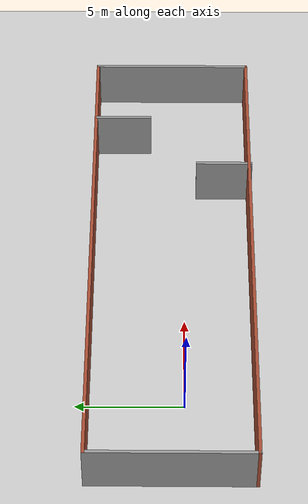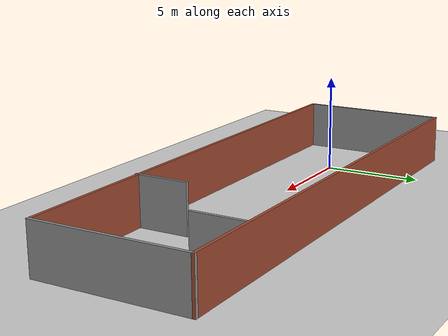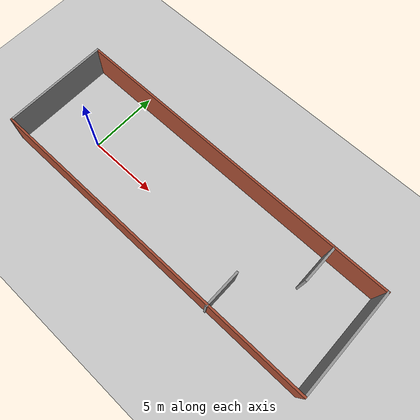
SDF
<sdf version="1.7">
 <world name="default">
  <light name="sun" type="directional">
   <pose>0 0 10 0 -0 0</pose>
   <diffuse>0.8 0.8 0.8 1</diffuse>
   <specular>0.2 0.2 0.2 1</specular>
   <attenuation>
    <range>1000</range>
    <constant>0.9</constant>
    <linear>0.01</linear>
    <quadratic>0.001</quadratic>
   </attenuation>
   <direction>-0.5 0.1 -0.9</direction>
   <spot><inner_angle>0</inner_angle><outer_angle>0</outer_angle><falloff>0</falloff></spot>
  </light>
  <model name="ground_plane">
   <static>1</static>
   <link name="link">
    <collision name="collision">
     <geometry><plane><normal>0 0 1</normal><size>100 100</size></plane></geometry>
     <surface><friction><ode><mu>100</mu><mu2>50</mu2></ode></friction></surface>
    </collision>
    <visual name="visual">
     <cast_shadows>0</cast_shadows>
     <geometry><plane><normal>0 0 1</normal><size>100 100</size></plane></geometry>
     <material>
      <script><uri>file://media/materials/scripts/gazebo.material</uri><name>Gazebo/Grey</name></script>
     </material>
    </visual>
   </link>
  </model>
  <gravity>0 0 -9.8</gravity>
  <magnetic_field>6e-06 2.3e-05 -4.2e-05</magnetic_field>
  <atmosphere type="adiabatic"/>
  <physics type="ode">
   <max_step_size>0.001</max_step_size>
   <real_time_factor>1</real_time_factor>
   <real_time_update_rate>1000</real_time_update_rate>
  </physics>
  <scene><ambient>0.4 0.4 0.4 1</ambient><background>0.7 0.7 0.7 1</background><shadows>1</shadows></scene>
  <spherical_coordinates>
   <surface_model>EARTH_WGS84</surface_model>
   <latitude_deg>0</latitude_deg>
   <longitude_deg>0</longitude_deg>
   <elevation>0</elevation>
   <heading_deg>0</heading_deg>
  </spherical_coordinates>
  <model name="test_3">
   <pose>7.95826 0.579486 0 0 -0 0</pose>
   <link name="Wall_11">
    <collision name="Wall_11_Collision">
     <geometry><box><size>7.75 0.15 2.5</size></box></geometry>
     <pose>0 0 1.25 0 -0 0</pose>
    </collision>
    <visual name="Wall_11_Visual">
     <pose>0 0 1.25 0 -0 0</pose>
     <geometry><box><size>7.75 0.15 2.5</size></box></geometry>
     <material>
      <script><uri>file://media/materials/scripts/gazebo.material</uri><name>Gazebo/Grey</name></script>
      <ambient>1 1 1 1</ambient>
     </material>
     <meta><layer>0</layer></meta>
    </visual>
    <pose>12.175 0.037628 0 0 -0 1.5708</pose>
   </link>
   <link name="Wall_13">
    <collision name="Wall_13_Collision">
     <geometry><box><size>24.5 0.15 2.5</size></box></geometry>
     <pose>0 0 1.25 0 -0 0</pose>
    </collision>
    <visual name="Wall_13_Visual">
     <pose>0 0 1.25 0 -0 0</pose>
     <geometry><box><size>24.5 0.15 2.5</size></box></geometry>
     <material>
      <script><uri>file://media/materials/scripts/gazebo.material</uri><name>Gazebo/Bricks</name></script>
      <ambient>1 1 1 1</ambient>
     </material>
     <meta><layer>0</layer></meta>
    </visual>
    <pose>0 3.83763 0 0 -0 3.14159</pose>
   </link>
   <link name="Wall_17">
    <collision name="Wall_17_Collision">
     <geometry><box><size>2.75 0.15 2.5</size></box></geometry>
     <pose>0 0 1.25 0 -0 0</pose>
    </collision>
    <visual name="Wall_17_Visual">
     <pose>0 0 1.25 0 -0 0</pose>
     <geometry><box><size>2.75 0.15 2.5</size></box></geometry>
     <material>
      <script><uri>file://media/materials/scripts/gazebo.material</uri><name>Gazebo/Grey</name></script>
      <ambient>1 1 1 1</ambient>
     </material>
     <meta><layer>0</layer></meta>
    </visual>
    <pose>5.15591 -2.53763 0 0 -0 -1.5708</pose>
   </link>
   <link name="Wall_19">
    <collision name="Wall_19_Collision">
     <geometry><box><size>2.75 0.15 2.5</size></box></geometry>
     <pose>0 0 1.25 0 -0 0</pose>
    </collision>
    <visual name="Wall_19_Visual">
     <pose>0 0 1.25 0 -0 0</pose>
     <geometry><box><size>2.75 0.15 2.5</size></box></geometry>
     <material>
      <script><uri>file://media/materials/scripts/gazebo.material</uri><name>Gazebo/Grey</name></script>
      <ambient>1 1 1 1</ambient>
     </material>
     <meta><layer>0</layer></meta>
    </visual>
    <pose>8.35659 2.46453 0 0 -0 -1.5708</pose>
   </link>
   <link name="Wall_6">
    <collision name="Wall_6_Collision">
     <geometry><box><size>24.5 0.15 2.5</size></box></geometry>
     <pose>0 0 1.25 0 -0 0</pose>
    </collision>
    <visual name="Wall_6_Visual">
     <pose>0 0 1.25 0 -0 0</pose>
     <geometry><box><size>24.5 0.15 2.5</size></box></geometry>
     <material>
      <script><uri>file://media/materials/scripts/gazebo.material</uri><name>Gazebo/Bricks</name></script>
      <ambient>1 1 1 1</ambient>
     </material>
     <meta><layer>0</layer></meta>
    </visual>
    <pose>0 -3.76237 0 0 -0 3.14159</pose>
   </link>
   <link name="Wall_7">
    <collision name="Wall_7_Collision">
     <geometry><box><size>7.75 0.15 2.5</size></box></geometry>
     <pose>0 0 1.25 0 -0 0</pose>
    </collision>
    <visual name="Wall_7_Visual">
     <pose>0 0 1.25 0 -0 0</pose>
     <geometry><box><size>7.75 0.15 2.5</size></box></geometry>
     <material>
      <script><uri>file://media/materials/scripts/gazebo.material</uri><name>Gazebo/Grey</name></script>
      <ambient>1 1 1 1</ambient>
     </material>
     <meta><layer>0</layer></meta>
    </visual>
    <pose>-12.175 0.037628 0 0 -0 1.5708</pose>
   </link>
   <static>1</static>
  </model>
 </world>
</sdf>
